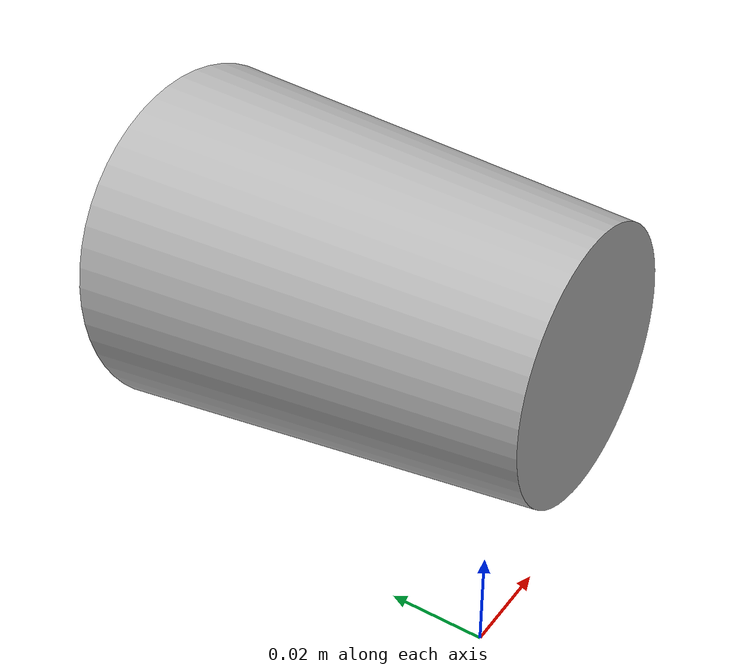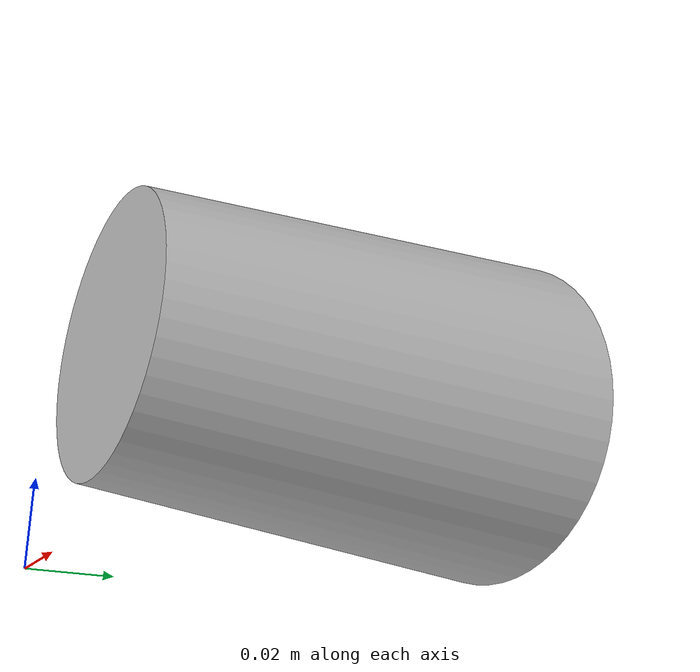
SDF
<?xml version="1.0" ?>
<sdf version="1.5">
  <model name="portable_cup_2">
    <static>false</static>
    <link name="link">
      <inertial>
        <pose>0.04 0.05 0.04 0 -0 0</pose>
        <mass>0.1</mass>
        <inertia>
          <ixx>0.00013667</ixx>
          <ixy>0</ixy>
          <ixz>0</ixz>
          <iyy>0.00010667</iyy>
          <iyz>0</iyz>
          <izz>0.00013667</izz>
        </inertia>
      </inertial>

      <collision name="col_portable_cup_2">
        <pose>0 0 0 0 0 0</pose>
        <geometry>
            <mesh>
                <uri>model://portable_cup_2/meshes/coffee.STL</uri>
            </mesh>
        </geometry>
        <surface>
          <friction>
            <ode>
              <mu>0.01</mu>
              <mu2>0.01</mu2>
            </ode>
          </friction>
          <contact>
            <ode>
              <kp>10000000.0</kp>
              <kd>10000000.0</kd>
              <min_depth>0.001</min_depth>
              <max_vel>1.1</max_vel>
            </ode>
          </contact>
        </surface>
      </collision>

      <visual name="visual_portable_cup_2">
        <pose>0 0 0 0 0 0</pose>
        <geometry>
          <mesh>
            <uri>model://portable_cup_2/meshes/coffee.STL</uri>

          </mesh>
        </geometry>
      </visual>
    </link>

  </model>
</sdf>
